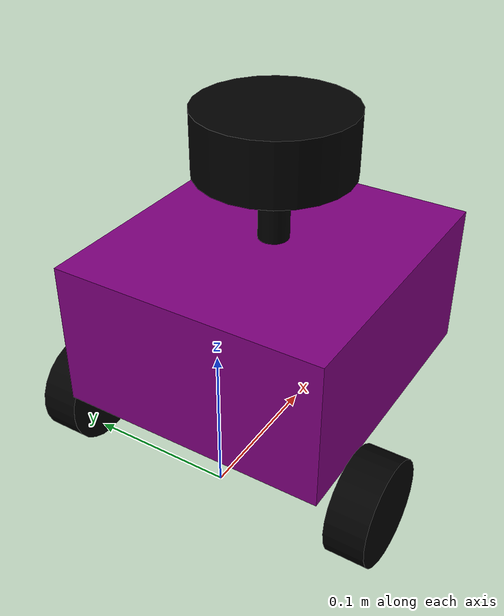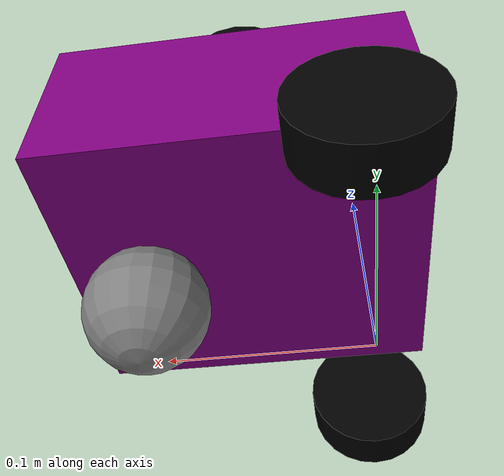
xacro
<?xml version="1.0"?>

<!-- autoJetsonBot/src/robot_body/urdf/robot.xacro -->

<robot xmlns:xacro="http://www.ros.org/wiki/xacro"  name="robot">

    <xacro:arg name="use_ros2_control" default="true"/>
    <xacro:arg name="sim_mode" default="false"/>

    <xacro:include filename="robot_core.xacro" />

    <xacro:if value="$(arg use_ros2_control)">
        <xacro:include filename="ros2_control.xacro" />
    </xacro:if>
    <xacro:unless value="$(arg use_ros2_control)">
        <xacro:include filename="gazebo_control.xacro" />
    </xacro:unless>
    <xacro:include filename="lidar.xacro" />
    <xacro:include filename="camera.xacro" />
    <xacro:include filename="imu.xacro" />

</robot>

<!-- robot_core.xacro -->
<robot xmlns:xacro="http://www.ros.org/wiki/xacro" >
<!-- /home/jetson/myspace/autoJetsonBot/src/my_robot_launch/urdf/robot_core.xacro -->
<xacro:include filename="inertial_macros.xacro" />

    <!-- COLORS FOR ROBOT PARTS -->
    <material name="grey">
        <color rgba="0.5 0.5 0.5 1"/>
    </material>
        <material name="grey2">
        <color rgba="0.75 0.75 0.75 1"/>
    </material>
    <material name="red">
        <color rgba="1 0 0 1"/>
    </material>
    <material name="green">
        <color rgba="0 1 0 1"/>
    </material>
    <material name="blue">
        <color rgba="0 0 1 1"/>
    </material>
    <material name="yellow">
        <color rgba="1 1 0 1"/>
    </material>
    <material name="orange">
        <color rgba="1 0.5 0 1"/>
    </material>
    <material name="purple">
        <color rgba="0.5 0 0.5 1"/>
    </material>
    <material name="black">
        <color rgba="0 0 0 1"/>
    </material>
    <material name="white">
        <color rgba="1 1 1 1"/>
    </material>

    <!-- BASE_FOOTPRINT LINK (The Floor Projection) -->

    <link name="base_footprint">
    </link>

    <joint name="base_footprint_joint" type="fixed">
        <parent link="base_footprint"/>
        <child link="base_link"/>
        <origin xyz="0 0 0.056" rpy="0 0 0"/>
    </joint>

    <!-- ROBOT BASE LINK (The Center of the Chassis Floor) -->

    <link name="base_link">
    </link>

    <!-- ROBOT CHASSIS LINK-->
    <joint name="chassis_joint" type="fixed">
        <origin xyz="0 0 0" rpy="0 0 0"/>
        <parent link="base_link"/>
        <child link="chassis"/>
    </joint>

    <!-- ROBOT CHASSIS -->
    <link name="chassis">
        <visual>
            <origin xyz="0.061 0 0.0485" rpy="0 0 0"/>
            <geometry>
                <box size="0.194 0.178 0.097"/>
            </geometry>
            <material name="purple"/>
        </visual>
        <collision>
            <origin xyz="0.061 0 0.0485" rpy="0 0 0"/>
            <geometry>
                <box size="0.194 0.178 0.097"/>
            </geometry>
        </collision>
        <xacro:inertial_box mass="1.2" x="0.194" y="0.178" z="0.097">
            <origin xyz="0.061 0 0.0485" rpy="0 0 0"/>
        </xacro:inertial_box>
    </link>
    <gazebo reference="chassis">
        <material>Gazebo/White</material>
    </gazebo>

    <!-- ROBOT WHEELS -->

    <!-- LEFT WHEEL -->
    <joint name="left_wheel_joint" type="continuous">
        <origin xyz="0 0.106 -0.022" rpy="-${pi/2} 0 0"/>
        <parent link="base_link"/>
        <child link="left_wheel"/>
        <axis xyz="0 0 1"/>
    </joint>

    <link name="left_wheel">
        <visual>
            <origin xyz="0 0 0" rpy="0 0 0"/>
            <geometry>
                <cylinder radius="0.034" length="0.026"/>
            </geometry>
            <material name="black"/>
        </visual>
        <collision>
            <origin xyz="0 0 0" rpy="0 0 0"/>
            <geometry>
                <cylinder radius="0.034" length="0.026"/>
            </geometry>
        </collision>
        <xacro:inertial_cylinder mass="0.1" length="0.026" radius="0.034">
            <origin xyz="0 0 0" rpy="0 0 0"/>
        </xacro:inertial_cylinder>

    </link>
    <gazebo reference="left_wheel">
        <material>Gazebo/Black</material>
        <mu1 value="100.0"/>
        <mu2 value="100.0"/>
        <kp value="1000000.0" />
        <kd value="1.0" />
    </gazebo>

    <!-- RIGHT WHEEL -->
    <joint name="right_wheel_joint" type="continuous">
        <origin xyz="0 -0.106 -0.022" rpy="${pi/2} 0 0"/>
        <parent link="base_link"/>
        <child link="right_wheel"/>
        <axis xyz="0 0 -1"/>
    </joint>

    <link name="right_wheel">
        <visual>
            <origin xyz="0 0 0" rpy="0 0 0"/>
            <geometry>
                <cylinder radius="0.034" length="0.026"/>
            </geometry>
            <material name="black"/>
        </visual>
        <collision>
            <origin xyz="0 0 0" rpy="0 0 0"/>
            <geometry>
                <cylinder radius="0.034" length="0.026"/>
            </geometry>
        </collision>
        <xacro:inertial_cylinder mass="0.1" length="0.026" radius="0.034">
            <origin xyz="0 0 0" rpy="0 0 0"/>
        </xacro:inertial_cylinder>
    </link>
    <gazebo reference="right_wheel">
        <material>Gazebo/Black</material>
        <mu1 value="100.0"/>
        <mu2 value="100.0"/>
        <kp value="1000000.0" />
        <kd value="1.0" />
    </gazebo>

    <!-- CASTER WHEEL -->
    <joint name="caster_wheel_joint" type="fixed">
        <origin xyz="0.115 0 -0.022" rpy="0 0 0"/>
        <parent link="base_link"/>
        <child link="caster_wheel"/>
    </joint>

    <link name="caster_wheel">
        <visual>
            <origin xyz="0 0 0" rpy="0 0 0"/>
            <geometry>
                <sphere radius="0.034"/>
            </geometry>
            <material name="grey"/>
        </visual>
        <collision>
            <origin xyz="0 0 0" rpy="0 0 0"/>
            <geometry>
                <sphere radius="0.034"/>
            </geometry>
        </collision>
        <xacro:inertial_sphere mass="0.1" radius="0.034">
            <origin xyz="0 0 0" rpy="0 0 0"/>
        </xacro:inertial_sphere>
    </link>
    <gazebo reference="caster_wheel">
        <material>Gazebo/Black</material>
        <mu1 value="0.001"/>
        <mu2 value="0.001"/>
    </gazebo>

</robot>

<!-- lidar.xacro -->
<robot xmlns:xacro="http://www.ros.org/wiki/xacro" >
<!-- /home/jetson/myspace/autoJetsonBot/src/my_robot_launch/urdf/lidar.xacro -->

    <joint name="laser_joint" type="fixed">
        <parent link="chassis"/>
        <child link="laser_frame"/>
        <origin xyz="0.064 0 0.161" rpy="0 0 -1.5708"/>
    </joint>

    <link name="laser_frame">
        <visual>
            <geometry>
                <cylinder radius="0.05" length="0.04"/>
            </geometry>
            <material name="black"/>
        </visual>
        <visual>
            <origin xyz="0 0 -0.05"/>
            <geometry>
                <cylinder radius="0.01" length="0.1"/>
            </geometry>
            <material name="black"/>
        </visual>
        <collision>
            <geometry>
                <cylinder radius="0.05" length="0.04"/>
            </geometry>
        </collision>
        <xacro:inertial_cylinder mass="0.1" length="0.04" radius="0.05">
            <origin xyz="0 0 0" rpy="0 0 0"/>
        </xacro:inertial_cylinder>
    </link>

    <gazebo reference="laser_frame">
        <material>Gazebo/Black</material>

        <sensor name="laser" type="ray">
            <pose> 0 0 0 0 0 0 </pose>
            <visualize>true</visualize>
            <update_rate>10</update_rate>
            <ray>
                <scan>
                    <horizontal>
                        <samples>360</samples>
                        <min_angle>-3.14</min_angle>
                        <max_angle>3.14</max_angle>
                    </horizontal>
                </scan>
                <range>
                    <min>0.3</min>
                    <max>12</max>
                </range>
            </ray>
            <plugin name="laser_controller" filename="libgazebo_ros_ray_sensor.so">
                <ros>
                    <argument>~/out:=scan</argument>
                </ros>
                <output_type>sensor_msgs/LaserScan</output_type>
                <frame_name>laser_frame</frame_name>
            </plugin>
        </sensor>
    </gazebo>

</robot>

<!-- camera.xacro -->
<!-- camera-->
<robot xmlns:xacro="http://www.ros.org/wiki/xacro" >

    <joint name="camera_joint" type="fixed">
        <origin xyz="0.1455 0 0.05" rpy="0 0 0"/>
        <parent link="chassis"/>
        <child link="camera_link"/>
    </joint>

    <link name="camera_link">
        <visual>
            <origin xyz="0 0 0" rpy="0 0 0"/>
            <geometry>
                <box size="0.017 0.017 0.017"/>
            </geometry>
            <material name="red"/>
        </visual>
        <xacro:inertial_cylinder mass="0.1" radius="0.035" length="0.025">
            <origin xyz="0 0 0" rpy="0 0 0"/>
        </xacro:inertial_cylinder>
    </link>

    <joint name="camera_optical_joint" type="fixed">
        <origin xyz="0.005 0 0" rpy="${-pi/2} 0 ${-pi/2}"/>
        <parent link="camera_link"/>
        <child link="camera_optical_link"/>
    </joint>

    <link name="camera_optical_link"></link>

    <gazebo reference="camera_link">
        <material>Gazebo/Red</material>
        <sensor name="camera" type="camera">
            <pose>0 0 0 0 0 0</pose>
            <visualize>true</visualize>
            <update_rate>10</update_rate>
            <camera>
                <horizontal_fov>1.3962634</horizontal_fov>
                <image>
                    <width>640</width>
                    <height>480</height>
                    <format>R8G8B8</format>
                </image>
                <clip>
                    <near>0.1</near>
                    <far>100</far>
                </clip>
            </camera>
            <plugin name="camera_controller" filename="libgazebo_ros_camera.so">
                <frame_name>camera_optical_link</frame_name>
            </plugin>
        </sensor>
    </gazebo>
</robot>

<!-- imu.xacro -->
<robot xmlns:xacro="http://www.ros.org/wiki/xacro" >

    <joint name="imu_joint" type="fixed">
        <parent link="base_link"/>
        <child link="imu_link"/>
        <origin xyz="0 0 0.1" rpy="0 0 0"/>
    </joint>

    <link name="imu_link"/>

    <gazebo reference="imu_link">
        <sensor name="imu_sensor" type="imu">
            <plugin name="imu_plugin" filename="libgazebo_ros_imu_sensor.so">
                <ros>
                    <remapping>~/out:=imu</remapping>
                </ros>
                <initial_orientation_as_reference>false</initial_orientation_as_reference>
            </plugin>
            <always_on>true</always_on>
            <update_rate>100</update_rate>
            <visualize>true</visualize>
            <imu>
                <angular_velocity>
                    <x>
                        <noise type="gaussian">
                            <mean>0.0</mean>
                            <stddev>2e-4</stddev>
                            <bias_mean>0.0000075</bias_mean>
                            <bias_stddev>0.0000008</bias_stddev>
                        </noise>
                    </x>
                    <y>
                        <noise type="gaussian">
                            <mean>0.0</mean>
                            <stddev>2e-4</stddev>
                            <bias_mean>0.0000075</bias_mean>
                            <bias_stddev>0.0000008</bias_stddev>
                        </noise>
                    </y>
                    <z>
                        <noise type="gaussian">
                            <mean>0.0</mean>
                            <stddev>2e-4</stddev>
                            <bias_mean>0.0000075</bias_mean>
                            <bias_stddev>0.0000008</bias_stddev>
                        </noise>
                    </z>
                </angular_velocity>
                <linear_acceleration>
                    <x>
                        <noise type="gaussian">
                            <mean>0.0</mean>
                            <stddev>1.7e-2</stddev>
                            <bias_mean>0.1</bias_mean>
                            <bias_stddev>0.001</bias_stddev>
                        </noise>
                    </x>
                    <y>
                        <noise type="gaussian">
                            <mean>0.0</mean>
                            <stddev>1.7e-2</stddev>
                            <bias_mean>0.1</bias_mean>
                            <bias_stddev>0.001</bias_stddev>
                        </noise>
                    </y>
                    <z>
                        <noise type="gaussian">
                            <mean>0.0</mean>
                            <stddev>1.7e-2</stddev>
                            <bias_mean>0.1</bias_mean>
                            <bias_stddev>0.001</bias_stddev>
                        </noise>
                    </z>
                </linear_acceleration>
            </imu>
        </sensor>
    </gazebo>

</robot>
